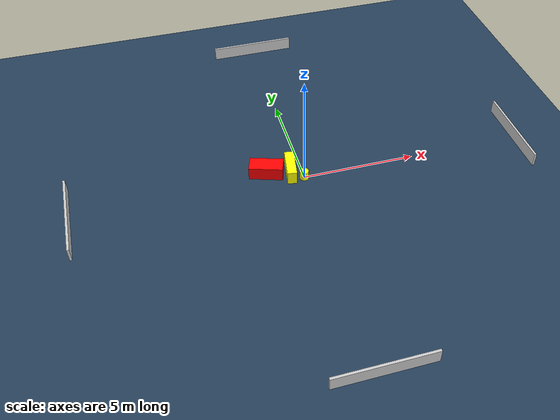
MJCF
<?xml version="1.0" ?>
<mujoco model="generated_environment">
  <option timestep="0.01" integrator="RK4" cone="elliptic"/>
  <default>
    <geom density="1"/>
  </default>
  <asset>
    <texture builtin="gradient" height="3072" name="skybox" rgb1="0.3 0.5 0.7" rgb2="0 0 0" type="skybox" width="512"/>
    <texture builtin="checker" height="300" name="groundplane" rgb1="0.2 0.3 0.4" rgb2="0.1 0.2 0.3" type="2d" width="300"/>
    <material name="groundplane" reflectance="0.2" texrepeat="5 5" texture="groundplane"/>
  </asset>
  <worldbody>
    <light dir="0 0 -1" directional="true" pos="0 0 1.5"/>
    <geom condim="3" friction="0.5 0.005 0.001" material="groundplane" name="floor" pos="0 0 0" size="0 0 0.05" type="plane"/>
    <body name="walls">
      <geom name="wall_1" condim="4" pos="-10.0 0.0 0.3" rgba="0.800000011920929 0.800000011920929 0.800000011920929 1.0" size="0.05 2.0 0.3" type="box"/>
      <geom name="wall_2" condim="4" pos="10.0 0.0 0.3" rgba="0.800000011920929 0.800000011920929 0.800000011920929 1.0" size="0.05 2.0 0.3" type="box"/>
      <geom name="wall_3" condim="4" pos="0.0 -10.0 0.3" rgba="0.800000011920929 0.800000011920929 0.800000011920929 1.0" size="2.0 0.05 0.3" type="box"/>
      <geom name="wall_4" condim="4" pos="0.0 10.0 0.3" rgba="0.800000011920929 0.800000011920929 0.800000011920929 1.0" size="2.0 0.05 0.3" type="box"/>
    </body>
    <body name="robot">
      <joint name="joint_x" type="slide" pos="0 0 0" axis="1 0 0"/>
      <joint name="joint_y" type="slide" pos="0 0 0" axis="0 1 0"/>
      <geom name="robot" type="cylinder" pos="0.0 0.0 0.2" size="0.2 0.2 0.0" mass="5.0" friction="1.0 0.005 0.0001" condim="4" rgba="1.0 1.0 0.0 1.0"/>
    </body>
    <body name="obstacle_1_movable">
      <geom name="obstacle_1_movable" condim="4" pos="-0.4818469013949826 0.4791869607061241 0.3" euler="0 0 351.1813521712842" friction="0.0 0.005 0.001" rgba="1.0 1.0 0.0 1.0" size="0.21128455972858515 0.6996131042697826 0.3" type="box" mass="0.1"/>
      <joint type="free"/>
    </body>
    <body name="obstacle_2_static">
      <geom name="obstacle_2_static" condim="4" pos="-1.5243673682781815 0.6749184255577029 0.3" euler="0 0 251.48332589855974" friction="0.0 0.005 0.001" rgba="1.0 0.0 0.0 1.0" size="0.35547263736144996 0.7361207296120005 0.3" type="box"/>
    </body>
  </worldbody>
  <actuator>
    <motor name="actuator_x" joint="joint_x" gear="1" ctrlrange="-1 1"/>
    <motor name="actuator_y" joint="joint_y" gear="1" ctrlrange="-1 1"/>
  </actuator>
</mujoco>
